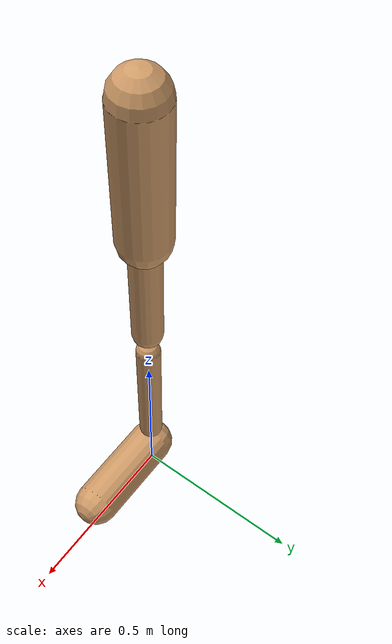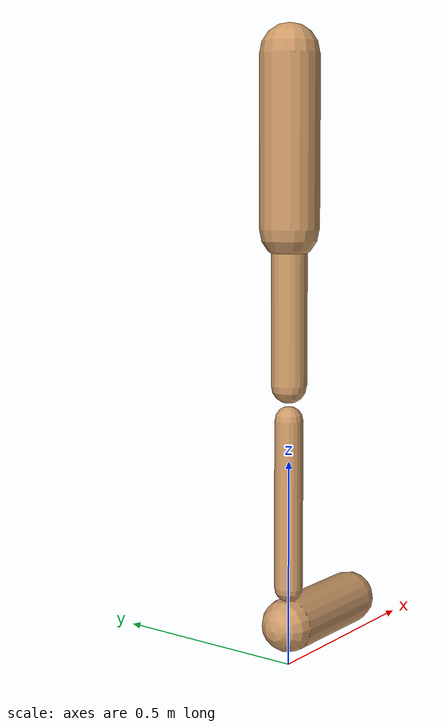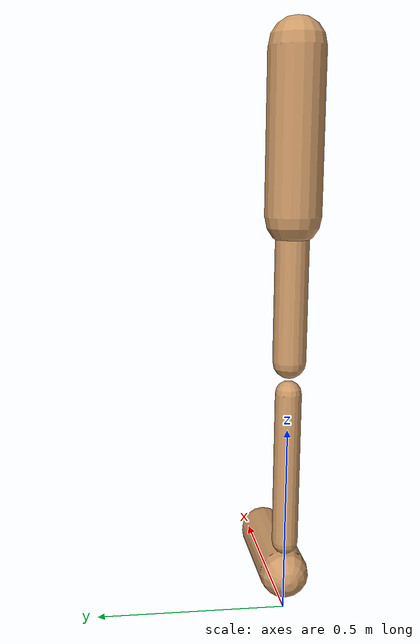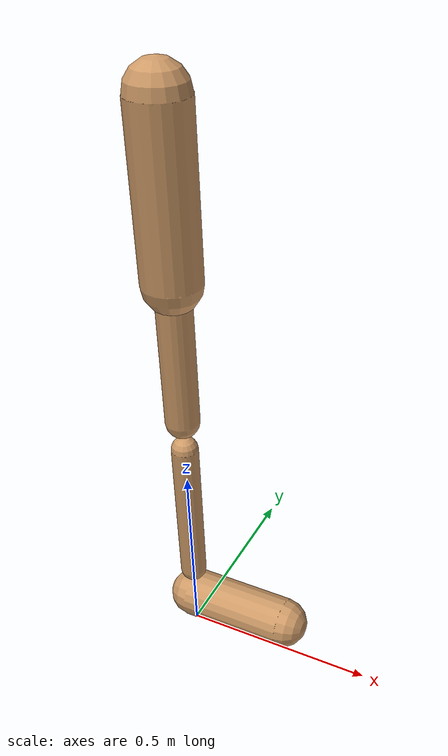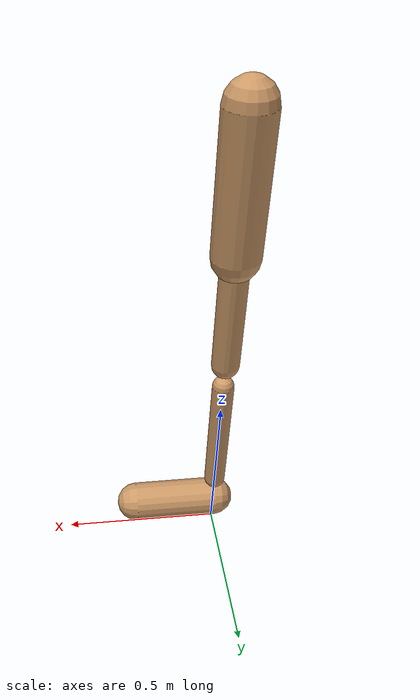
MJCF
<mujoco model="walker2d">
  <compiler angle="degree" coordinate="global" inertiafromgeom="true" />
  <default>
    <joint armature="0.01" damping=".1" limited="true" />
    <geom conaffinity="0" condim="3" contype="1" density="1000" friction="0.8 .1 .1" rgba="0.8 0.6 .4 1" />
  </default>
  <option integrator="RK4" timestep="0.002" />
  <worldbody>

    <body name="torso" pos="0 0 -0.17674895991246808">
      <joint armature="0" axis="1 0 0" damping="0" limited="false" name="ignorex" pos="0 0 0" stiffness="0" type="slide" />
      <joint armature="0" axis="0 0 1" damping="0" limited="false" name="ignorez" pos="0 0 0" ref="1.25" stiffness="0" type="slide" />
      <joint armature="0" axis="0 1 0" damping="0" limited="false" name="ignorey" pos="0 0 0" stiffness="0" type="hinge" />
      <geom fromto="0 0 1.45 0 0 1.05" name="torso_geom" size="0.07061458483336558" type="capsule" />
      <body name="thigh">
        <joint axis="0 -1 0" name="thigh_joint" pos="0 0 1.05" range="-150 0" type="hinge" />
        <geom fromto="0.0 0.0 1.05 0.0 0.0 0.6837231915374848" name="thigh_geom" size="0.04252549470212352" type="capsule" />
        <body name="leg" pos="0.0 0.0 0.08372319153748486">
          <joint axis="0 -1 0" name="leg_joint" pos="0 0 0.6" range="-150 0" type="hinge" />
          <geom fromto="0.0 0.0 0.6 0.0 0.0 0.1930257683749832" name="leg_geom" size="0.03402039576169882" type="capsule" />
          <body name="foot" pos="0.0 0.0 0.09302576837498319">
            <joint axis="0 -1 0" name="foot_joint" pos="0 0 0.1" range="-45 45" type="hinge" />
            <geom fromto="-0.0 0.0 0.1 0.26767345250110847 0.0 0.1" name="foot_geom" size="0.0646122078411723" type="capsule" />
          </body>
        </body>
      </body>

      <body name="thigh_left">
        <joint axis="0 -1 0" name="thigh_left_joint" pos="0 0 1.05" range="-150 0" type="hinge" />
        <geom fromto="0.0 0.0 1.05 0.0 0.0 0.6837231915374848" name="thigh_left_geom" rgba=".7 .3 .6 1" size="0.04252549470212352" type="capsule" />
        <body name="leg_left" pos="0.0 0.0 0.08372319153748486">
          <joint axis="0 -1 0" name="leg_left_joint" pos="0 0 0.6" range="-150 0" type="hinge" />
          <geom fromto="0.0 0.0 0.6 0.0 0.0 0.1930257683749832" name="leg_left_geom" rgba=".7 .3 .6 1" size="0.03402039576169882" type="capsule" />
          <body name="foot_left" pos="0.0 0.0 0.09302576837498319">
            <joint axis="0 -1 0" name="foot_left_joint" pos="0 0 0.1" range="-45 45" type="hinge" />
            <geom fromto="-0.0 0.0 0.1 0.26767345250110847 0.0 0.1" name="foot_left_geom" rgba=".7 .3 .6 1" size="0.0646122078411723" type="capsule" />
          </body>
        </body>
      </body>
    </body>
  </worldbody>
  <actuator>

    <motor ctrllimited="true" ctrlrange="-1.0 1.0" gear="100" joint="thigh_joint" />
    <motor ctrllimited="true" ctrlrange="-1.0 1.0" gear="100" joint="leg_joint" />
    <motor ctrllimited="true" ctrlrange="-1.0 1.0" gear="100" joint="foot_joint" />
    <motor ctrllimited="true" ctrlrange="-1.0 1.0" gear="100" joint="thigh_left_joint" />
    <motor ctrllimited="true" ctrlrange="-1.0 1.0" gear="100" joint="leg_left_joint" />
    <motor ctrllimited="true" ctrlrange="-1.0 1.0" gear="100" joint="foot_left_joint" />

  </actuator>
</mujoco>
